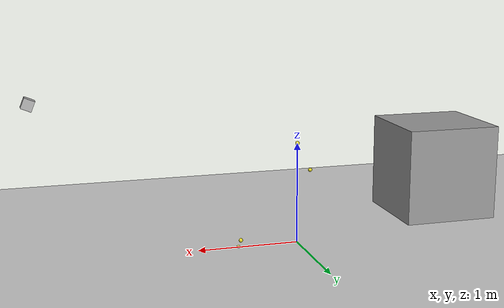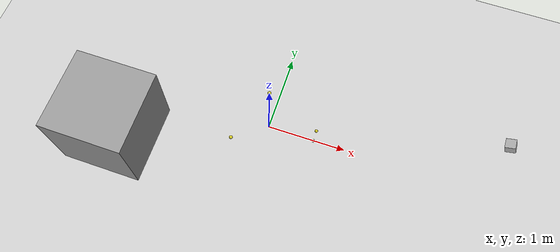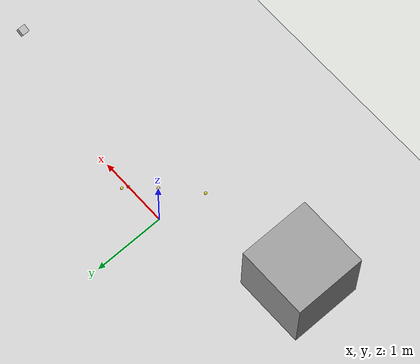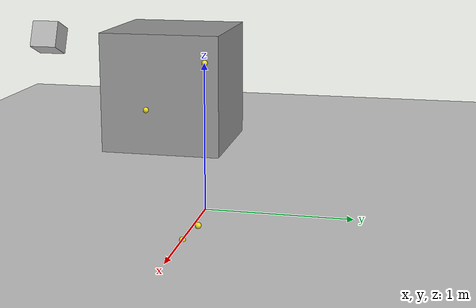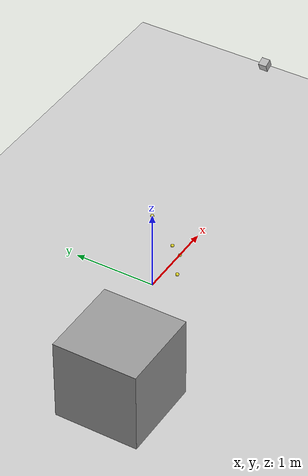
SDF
<sdf version="1.6">
 <world name="default">
  <light name="sun" type="directional">
   <pose>0 0 10 0 -0 0</pose>
   <diffuse>0.8 0.8 0.8 1</diffuse>
   <specular>0.2 0.2 0.2 1</specular>
   <attenuation>
    <range>1000</range>
    <constant>0.9</constant>
    <linear>0.01</linear>
    <quadratic>0.001</quadratic>
   </attenuation>
   <direction>-0.5 0.1 -0.9</direction>
  </light>
  <model name="ground_plane">
   <static>1</static>
   <link name="link">
    <collision name="collision">
     <geometry><plane><normal>0 0 1</normal><size>100 100</size></plane></geometry>
     <surface>
      <contact><collide_bitmask>65535</collide_bitmask></contact>
      <friction><ode><mu>100</mu><mu2>50</mu2></ode></friction>
     </surface>
    </collision>
    <visual name="visual">
     <cast_shadows>0</cast_shadows>
     <geometry><plane><normal>0 0 1</normal><size>100 100</size></plane></geometry>
     <material>
      <script><uri>file://media/materials/scripts/gazebo.material</uri><name>Gazebo/Grey</name></script>
     </material>
    </visual>
   </link>
  </model>
  <model name="camera">
   <static>1</static>
   <pose>2.5 0 1.5 -0 0.4 3.14</pose>
   <link name="link">
    <visual name="visual"><geometry><box><size>0.1 0.1 0.1</size></box></geometry></visual>
    <sensor name="my_camera" type="camera">
     <camera name="__default__">
      <save enabled="0"><path>/tmp/camera_save_tutorial</path></save>
      <horizontal_fov>1.047</horizontal_fov>
      <image><width>1920</width><height>1080</height></image>
      <clip><near>0.1</near><far>100</far></clip>
     </camera>
     <always_on>1</always_on>
     <update_rate>30</update_rate>
    </sensor>
   </link>
  </model>
  <gravity>0 0 -9.8</gravity>
  <magnetic_field>6e-06 2.3e-05 -4.2e-05</magnetic_field>
  <atmosphere type="adiabatic"/>
  <physics name="default_physics" default="0" type="ode">
   <max_step_size>0.001</max_step_size>
   <real_time_factor>1</real_time_factor>
   <real_time_update_rate>1000</real_time_update_rate>
  </physics>
  <scene><ambient>0.4 0.4 0.4 1</ambient><background>0.7 0.7 0.7 1</background><shadows>1</shadows></scene>
  <audio><device>default</device></audio>
  <spherical_coordinates>
   <surface_model>EARTH_WGS84</surface_model>
   <latitude_deg>0</latitude_deg>
   <longitude_deg>0</longitude_deg>
   <elevation>0</elevation>
   <heading_deg>0</heading_deg>
  </spherical_coordinates>
  <model name="goal1">
   <static>1</static>
   <pose>0.6 0 0 0 -0 0</pose>
   <link name="link">
    <inertial>
     <mass>1</mass>
     <inertia><ixx>0.1</ixx><ixy>0</ixy><ixz>0</ixz><iyy>0.1</iyy><iyz>0</iyz><izz>0.1</izz></inertia>
    </inertial>
    <visual name="visual">
     <geometry><sphere><radius>0.02</radius></sphere></geometry>
     <material>
      <script><name>Gazebo/Yellow</name><uri>file://media/materials/scripts/gazebo.material</uri></script>
     </material>
    </visual>
   </link>
  </model>
  <model name="goal2">
   <static>1</static>
   <pose>0 0 1 0 -0 0</pose>
   <link name="link">
    <inertial>
     <mass>1</mass>
     <inertia><ixx>0.1</ixx><ixy>0</ixy><ixz>0</ixz><iyy>0.1</iyy><iyz>0</iyz><izz>0.1</izz></inertia>
    </inertial>
    <visual name="visual">
     <geometry><sphere><radius>0.02</radius></sphere></geometry>
     <material>
      <script><name>Gazebo/Yellow</name><uri>file://media/materials/scripts/gazebo.material</uri></script>
     </material>
    </visual>
   </link>
  </model>
  <model name="goal3">
   <static>1</static>
   <pose>-0.3 -0.5 0.6 0 -0 0</pose>
   <link name="link">
    <inertial>
     <mass>1</mass>
     <inertia><ixx>0.1</ixx><ixy>0</ixy><ixz>0</ixz><iyy>0.1</iyy><iyz>0</iyz><izz>0.1</izz></inertia>
    </inertial>
    <visual name="visual">
     <geometry><sphere><radius>0.02</radius></sphere></geometry>
     <material>
      <script><name>Gazebo/Yellow</name><uri>file://media/materials/scripts/gazebo.material</uri></script>
     </material>
    </visual>
   </link>
  </model>
  <model name="goal4">
   <static>1</static>
   <pose>0.6 0.1 0.1 0 -0 0</pose>
   <link name="link">
    <inertial>
     <mass>1</mass>
     <inertia><ixx>0.1</ixx><ixy>0</ixy><ixz>0</ixz><iyy>0.1</iyy><iyz>0</iyz><izz>0.1</izz></inertia>
    </inertial>
    <visual name="visual">
     <geometry><sphere><radius>0.02</radius></sphere></geometry>
     <material>
      <script><name>Gazebo/Yellow</name><uri>file://media/materials/scripts/gazebo.material</uri></script>
     </material>
    </visual>
   </link>
  </model>
  <model name="unit_box">
   <pose>-1.79499 -0.700316 0.5 0 -0 0</pose>
   <link name="link">
    <inertial>
     <mass>1</mass>
     <inertia>
      <ixx>0.166667</ixx>
      <ixy>0</ixy>
      <ixz>0</ixz>
      <iyy>0.166667</iyy>
      <iyz>0</iyz>
      <izz>0.166667</izz>
     </inertia>
    </inertial>
    <collision name="collision"><geometry><box><size>1 1 1</size></box></geometry></collision>
    <visual name="visual">
     <geometry><box><size>1 1 1</size></box></geometry>
     <material>
      <script><name>Gazebo/Grey</name><uri>file://media/materials/scripts/gazebo.material</uri></script>
     </material>
    </visual>
   </link>
  </model>
 </world>
</sdf>
